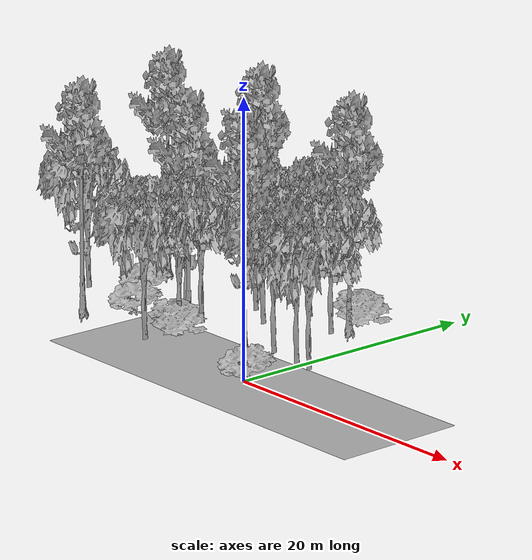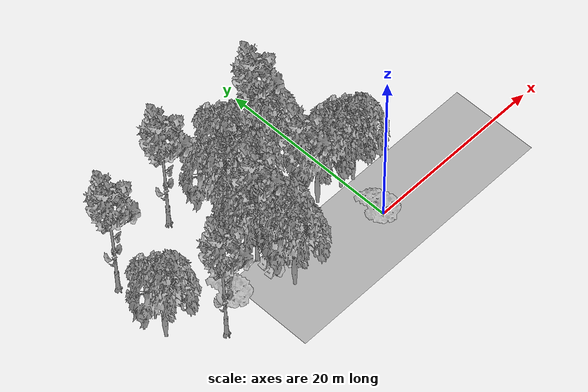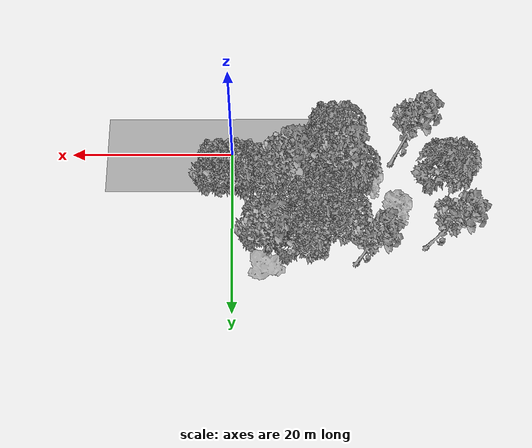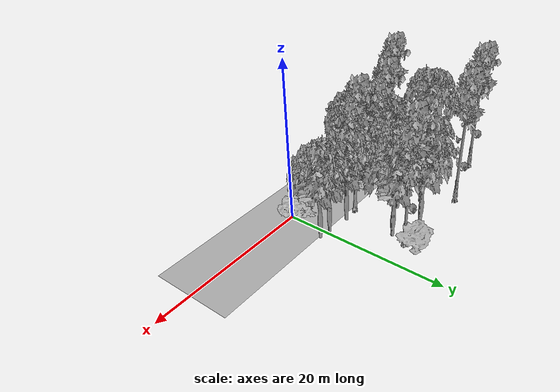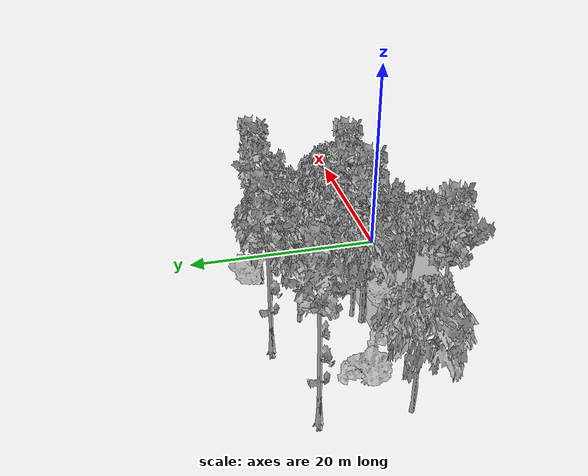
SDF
<sdf version="1.7">
 <world name="default">
  <model name="ground_plane">
   <static>1</static>
   <link name="link">
    <collision name="collision">
     <pose>-50 0 0 0 -0 0</pose>
     <geometry><plane><normal>0 0 1</normal><size>100 100</size></plane></geometry>
     <surface><contact><ode><min_depth>0.01</min_depth><max_vel>0</max_vel></ode></contact></surface>
    </collision>
    <visual name="grass">
     <cast_shadows>0</cast_shadows>
     <geometry>
      <mesh>
       <scale>0.5814285714285714 0.18142857142857144 0.1</scale>
       <uri>file://grass_plane/meshes/grass_plane.dae</uri>
      </mesh>
     </geometry>
    </visual>
   </link>
  </model>
  <model name="Tree 4">
   <static>1</static>
   <pose>-10.991106747070546 2.614081830153687 0 1.57079 -0 0</pose>
   <link name="link">
    <collision name="collision">
     <geometry><mesh><scale>3 2 3</scale><uri>model://tree_3/meshes/tree_3.obj</uri></mesh></geometry>
    </collision>
    <visual name="visual">
     <geometry><mesh><scale>3 2 3</scale><uri>model://tree_3/meshes/tree_3.obj</uri></mesh></geometry>
    </visual>
   </link>
  </model>
  <model name="Tree 5">
   <static>1</static>
   <pose>-4.034608851743975 11.470205256583032 0 1.57079 -0 0</pose>
   <link name="link">
    <collision name="collision">
     <geometry><mesh><scale>3.5 5 3.5</scale><uri>model://tree_2/meshes/tree_2.obj</uri></mesh></geometry>
    </collision>
    <visual name="visual">
     <geometry><mesh><scale>3.5 5 3.5</scale><uri>model://tree_2/meshes/tree_2.obj</uri></mesh></geometry>
    </visual>
   </link>
  </model>
  <model name="Tree 17">
   <static>1</static>
   <pose>-11.648803074690449 0.49937925572685415 0 1.57079 -0 0</pose>
   <link name="link">
    <collision name="collision">
     <geometry><mesh><scale>3.5 5 3.5</scale><uri>model://tree_2/meshes/tree_2.obj</uri></mesh></geometry>
    </collision>
    <visual name="visual">
     <geometry><mesh><scale>3.5 5 3.5</scale><uri>model://tree_2/meshes/tree_2.obj</uri></mesh></geometry>
    </visual>
   </link>
  </model>
  <model name="Tree 18">
   <static>1</static>
   <pose>-23.352166290836816 12.0966931474726 0 1.57079 -0 0</pose>
   <link name="link">
    <collision name="collision">
     <geometry><mesh><scale>3.5 5 3.5</scale><uri>model://tree_9/meshes/tree_9.obj</uri></mesh></geometry>
    </collision>
    <visual name="visual">
     <geometry><mesh><scale>3.5 5 3.5</scale><uri>model://tree_9/meshes/tree_9.obj</uri></mesh></geometry>
    </visual>
   </link>
  </model>
  <model name="Tree 21">
   <static>1</static>
   <pose>-19.82992579264648 1.2460721862466535 0 1.57079 -0 0</pose>
   <link name="link">
    <collision name="collision">
     <geometry><mesh><scale>3.5 5 3.5</scale><uri>model://tree_9/meshes/tree_9.obj</uri></mesh></geometry>
    </collision>
    <visual name="visual">
     <geometry><mesh><scale>3.5 5 3.5</scale><uri>model://tree_9/meshes/tree_9.obj</uri></mesh></geometry>
    </visual>
   </link>
  </model>
  <model name="Tree 27">
   <static>1</static>
   <pose>-0.5780417767173276 5.187824880138397 0 1.57079 -0 0</pose>
   <link name="link">
    <collision name="collision">
     <geometry><mesh><scale>3.5 5 3.5</scale><uri>model://tree_2/meshes/tree_2.obj</uri></mesh></geometry>
    </collision>
    <visual name="visual">
     <geometry><mesh><scale>3.5 5 3.5</scale><uri>model://tree_2/meshes/tree_2.obj</uri></mesh></geometry>
    </visual>
   </link>
  </model>
  <model name="Tree 38">
   <static>1</static>
   <pose>-3.838863136244349 13.155727809123352 0 1.57079 -0 0</pose>
   <link name="link">
    <collision name="collision">
     <geometry><mesh><scale>3.5 5 3.5</scale><uri>model://tree_9/meshes/tree_9.obj</uri></mesh></geometry>
    </collision>
    <visual name="visual">
     <geometry><mesh><scale>3.5 5 3.5</scale><uri>model://tree_9/meshes/tree_9.obj</uri></mesh></geometry>
    </visual>
   </link>
  </model>
  <model name="Tree 42">
   <static>1</static>
   <pose>-3.4185590659913814 5.536491068405979 0 1.57079 -0 0</pose>
   <link name="link">
    <collision name="collision">
     <geometry><mesh><scale>3.5 5 3.5</scale><uri>model://tree_2/meshes/tree_2.obj</uri></mesh></geometry>
    </collision>
    <visual name="visual">
     <geometry><mesh><scale>3.5 5 3.5</scale><uri>model://tree_2/meshes/tree_2.obj</uri></mesh></geometry>
    </visual>
   </link>
  </model>
  <model name="Tree 52">
   <static>1</static>
   <pose>-16.875871291433892 3.7587202509385946 0 1.57079 -0 0</pose>
   <link name="link">
    <collision name="collision">
     <geometry><mesh><scale>4 2.5 4</scale><uri>model://tree_1/meshes/tree_1.obj</uri></mesh></geometry>
    </collision>
    <visual name="visual">
     <geometry><mesh><scale>4 2.5 4</scale><uri>model://tree_1/meshes/tree_1.obj</uri></mesh></geometry>
    </visual>
   </link>
  </model>
  <model name="Tree 58">
   <static>1</static>
   <pose>-8.90500558640094 9.248450490392987 0 1.57079 -0 0</pose>
   <link name="link">
    <collision name="collision">
     <geometry><mesh><scale>3.5 5 3.5</scale><uri>model://tree_2/meshes/tree_2.obj</uri></mesh></geometry>
    </collision>
    <visual name="visual">
     <geometry><mesh><scale>3.5 5 3.5</scale><uri>model://tree_2/meshes/tree_2.obj</uri></mesh></geometry>
    </visual>
   </link>
  </model>
  <model name="Tree 62">
   <static>1</static>
   <pose>0.9080979779931795 5.01463457170459 0 1.57079 -0 0</pose>
   <link name="link">
    <collision name="collision">
     <geometry><mesh><scale>3.5 5 3.5</scale><uri>model://tree_2/meshes/tree_2.obj</uri></mesh></geometry>
    </collision>
    <visual name="visual">
     <geometry><mesh><scale>3.5 5 3.5</scale><uri>model://tree_2/meshes/tree_2.obj</uri></mesh></geometry>
    </visual>
   </link>
  </model>
  <model name="Tree 65">
   <static>1</static>
   <pose>-7.939954184991969 12.892459224261561 0 1.57079 -0 0</pose>
   <link name="link">
    <collision name="collision">
     <geometry><mesh><scale>3.5 5 3.5</scale><uri>model://tree_2/meshes/tree_2.obj</uri></mesh></geometry>
    </collision>
    <visual name="visual">
     <geometry><mesh><scale>3.5 5 3.5</scale><uri>model://tree_2/meshes/tree_2.obj</uri></mesh></geometry>
    </visual>
   </link>
  </model>
  <model name="Tree 73">
   <static>1</static>
   <pose>-20.149543465623477 7.303332908432736 0 1.57079 -0 0</pose>
   <link name="link">
    <collision name="collision">
     <geometry><mesh><scale>4 2.5 4</scale><uri>model://tree_1/meshes/tree_1.obj</uri></mesh></geometry>
    </collision>
    <visual name="visual">
     <geometry><mesh><scale>4 2.5 4</scale><uri>model://tree_1/meshes/tree_1.obj</uri></mesh></geometry>
    </visual>
   </link>
  </model>
  <model name="Tree 79">
   <static>1</static>
   <pose>-10.759091453047326 2.990395512762735 0 1.57079 -0 0</pose>
   <link name="link">
    <collision name="collision">
     <geometry><mesh><scale>3.5 5 3.5</scale><uri>model://tree_2/meshes/tree_2.obj</uri></mesh></geometry>
    </collision>
    <visual name="visual">
     <geometry><mesh><scale>3.5 5 3.5</scale><uri>model://tree_2/meshes/tree_2.obj</uri></mesh></geometry>
    </visual>
   </link>
  </model>
  <model name="Tree 91">
   <static>1</static>
   <pose>-4.104765478091004 14.230421572867208 0 1.57079 -0 0</pose>
   <link name="link">
    <collision name="collision">
     <geometry><mesh><scale>3 2 3</scale><uri>model://tree_3/meshes/tree_3.obj</uri></mesh></geometry>
    </collision>
    <visual name="visual">
     <geometry><mesh><scale>3 2 3</scale><uri>model://tree_3/meshes/tree_3.obj</uri></mesh></geometry>
    </visual>
   </link>
  </model>
  <model name="Tree 103">
   <static>1</static>
   <pose>-11.958193216582437 5.990083745467466 0 1.57079 -0 0</pose>
   <link name="link">
    <collision name="collision">
     <geometry><mesh><scale>3.5 5 3.5</scale><uri>model://tree_2/meshes/tree_2.obj</uri></mesh></geometry>
    </collision>
    <visual name="visual">
     <geometry><mesh><scale>3.5 5 3.5</scale><uri>model://tree_2/meshes/tree_2.obj</uri></mesh></geometry>
    </visual>
   </link>
  </model>
  <model name="Tree 122">
   <static>1</static>
   <pose>-12.982246262253781 5.460829168044384 0 1.57079 -0 0</pose>
   <link name="link">
    <collision name="collision">
     <geometry><mesh><scale>3.5 5 3.5</scale><uri>model://tree_2/meshes/tree_2.obj</uri></mesh></geometry>
    </collision>
    <visual name="visual">
     <geometry><mesh><scale>3.5 5 3.5</scale><uri>model://tree_2/meshes/tree_2.obj</uri></mesh></geometry>
    </visual>
   </link>
  </model>
  <model name="Tree 126">
   <static>1</static>
   <pose>-12.068114173183055 4.947614015438944 0 1.57079 -0 0</pose>
   <link name="link">
    <collision name="collision">
     <geometry><mesh><scale>3.5 5 3.5</scale><uri>model://tree_9/meshes/tree_9.obj</uri></mesh></geometry>
    </collision>
    <visual name="visual">
     <geometry><mesh><scale>3.5 5 3.5</scale><uri>model://tree_9/meshes/tree_9.obj</uri></mesh></geometry>
    </visual>
   </link>
  </model>
  <model name="Tree 131">
   <static>1</static>
   <pose>-5.9331859587199105 5.015698499570089 0 1.57079 -0 0</pose>
   <link name="link">
    <collision name="collision">
     <geometry><mesh><scale>3.5 5 3.5</scale><uri>model://tree_9/meshes/tree_9.obj</uri></mesh></geometry>
    </collision>
    <visual name="visual">
     <geometry><mesh><scale>3.5 5 3.5</scale><uri>model://tree_9/meshes/tree_9.obj</uri></mesh></geometry>
    </visual>
   </link>
  </model>
  <model name="Tree 155">
   <static>1</static>
   <pose>-0.3425811376209609 0.4502934834259946 0 1.57079 -0 0</pose>
   <link name="link">
    <collision name="collision">
     <geometry><mesh><scale>4 2.5 4</scale><uri>model://tree_1/meshes/tree_1.obj</uri></mesh></geometry>
    </collision>
    <visual name="visual">
     <geometry><mesh><scale>4 2.5 4</scale><uri>model://tree_1/meshes/tree_1.obj</uri></mesh></geometry>
    </visual>
   </link>
  </model>
  <model name="Tree 156">
   <static>1</static>
   <pose>-11.64664919134674 10.870114808656734 0 1.57079 -0 0</pose>
   <link name="link">
    <collision name="collision">
     <geometry><mesh><scale>3.5 5 3.5</scale><uri>model://tree_2/meshes/tree_2.obj</uri></mesh></geometry>
    </collision>
    <visual name="visual">
     <geometry><mesh><scale>3.5 5 3.5</scale><uri>model://tree_2/meshes/tree_2.obj</uri></mesh></geometry>
    </visual>
   </link>
  </model>
  <model name="Tree 161">
   <static>1</static>
   <pose>-14.85486219220013 14.07463241818493 0 1.57079 -0 0</pose>
   <link name="link">
    <collision name="collision">
     <geometry><mesh><scale>3.5 5 3.5</scale><uri>model://tree_9/meshes/tree_9.obj</uri></mesh></geometry>
    </collision>
    <visual name="visual">
     <geometry><mesh><scale>3.5 5 3.5</scale><uri>model://tree_9/meshes/tree_9.obj</uri></mesh></geometry>
    </visual>
   </link>
  </model>
  <model name="Tree 169">
   <static>1</static>
   <pose>-24.070118923214466 4.9649795506299945 0 1.57079 -0 0</pose>
   <link name="link">
    <collision name="collision">
     <geometry><mesh><scale>3.5 5 3.5</scale><uri>model://tree_2/meshes/tree_2.obj</uri></mesh></geometry>
    </collision>
    <visual name="visual">
     <geometry><mesh><scale>3.5 5 3.5</scale><uri>model://tree_2/meshes/tree_2.obj</uri></mesh></geometry>
    </visual>
   </link>
  </model>
 </world>
</sdf>
